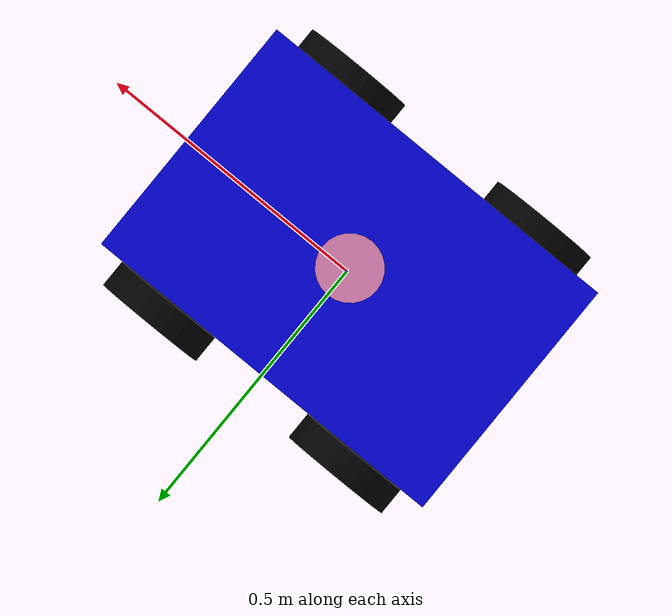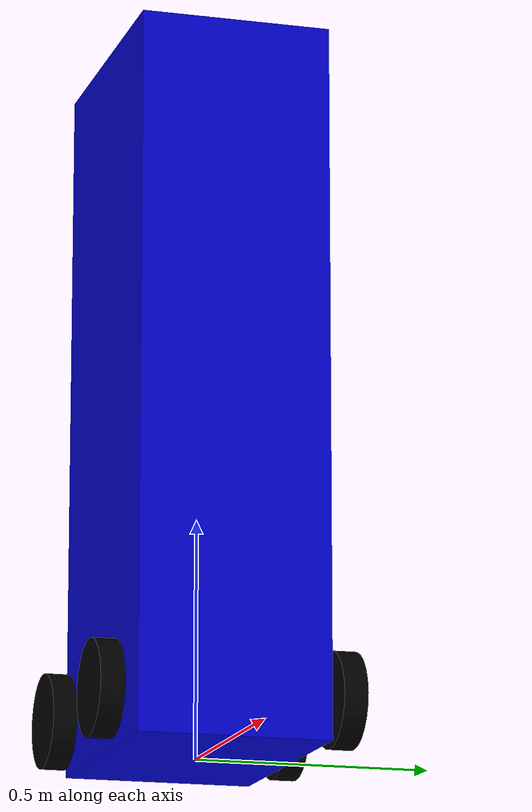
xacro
<?xml version="1.0"?>
<robot name="my_bot" xmlns:xacro="http://ros.org/wiki/xacro">

  <!-- Base Link -->
  <link name="base_link">
    <visual>
      <geometry><box size="0.6 0.4 1.5"/></geometry>
      <origin xyz="0 0 0.75" rpy="0 0 0"/>
      <material name="blue"><color rgba="0 0 0.8 1"/></material>
    </visual>
    <collision>
      <geometry><box size="0.6 0.4 1.5"/></geometry>
      <origin xyz="0 0 0.75" rpy="0 0 0"/>
    </collision>
    <inertial>
      <mass value="20.0"/>
      <inertia ixx="1.0" ixy="0" ixz="0" iyy="1.0" iyz="0" izz="1.0"/>
    </inertial>
  </link>

  <!-- Footprint (needed for Nav2) -->
  <link name="base_footprint"/>
  <joint name="base_joint" type="fixed">
    <parent link="base_link"/>
    <child link="base_footprint"/>
    <origin xyz="0 0 0" rpy="0 0 0"/>
  </joint>

  <!-- Wheels Macros -->
  <xacro:macro name="wheel" params="name x y">
    <link name="${name}_wheel">
        <visual><geometry><cylinder radius="0.1" length="0.05"/></geometry><material name="black"><color rgba="0 0 0 1"/></material></visual>
        <collision><geometry><cylinder radius="0.1" length="0.05"/></geometry></collision>
        <inertial><mass value="1.0"/><inertia ixx="0.1" ixy="0" ixz="0" iyy="0.1" iyz="0" izz="0.1"/></inertial>
    </link>
    <joint name="${name}_wheel_joint" type="continuous">
        <parent link="base_link"/>
        <child link="${name}_wheel"/>
        <origin xyz="${x} ${y} 0.1" rpy="-1.5707 0 0"/>
        <axis xyz="0 0 1"/>
    </joint>
  </xacro:macro>

  <xacro:wheel name="front_left" x="0.2" y="0.25"/>
  <xacro:wheel name="front_right" x="0.2" y="-0.25"/>
  <xacro:wheel name="rear_left" x="-0.2" y="0.25"/>
  <xacro:wheel name="rear_right" x="-0.2" y="-0.25"/>

  <!-- LIDAR -->
  <link name="lidar_link">
    <visual><geometry><cylinder radius="0.05" length="0.1"/></geometry></visual>
  </link>
  <joint name="lidar_joint" type="fixed">
    <parent link="base_link"/>
    <child link="lidar_link"/>
    <origin xyz="0 0 1.55" rpy="0 0 0"/>
  </joint>

  <!-- IMU -->
  <link name="imu_link"/>
  <joint name="imu_joint" type="fixed">
    <parent link="base_link"/>
    <child link="imu_link"/>
    <origin xyz="0 0 0.5"/>
  </joint>

  <!-- GPS -->
  <link name="gps_link"/>
  <joint name="gps_joint" type="fixed">
    <parent link="base_link"/>
    <child link="gps_link"/>
    <origin xyz="0 0 1.5"/>
  </joint>

  <!-- Gazebo Plugins -->
  <gazebo>
    <!-- Diff Drive (Controls rear wheels, simulated skid steer) -->
     <plugin filename="gz-sim-diff-drive-system" name="gz::sim::systems::DiffDrive">
        <left_joint>rear_left_wheel_joint</left_joint>
        <left_joint>front_left_wheel_joint</left_joint>
        <right_joint>rear_right_wheel_joint</right_joint>
        <right_joint>front_right_wheel_joint</right_joint>
        <wheel_separation>0.5</wheel_separation>
        <wheel_radius>0.1</wheel_radius>
        <odom_publish_frequency>20</odom_publish_frequency>
        <topic>cmd_vel</topic>
        <!-- This plugin will publish odometry on this topic -->
        <odom_topic>odom</odom_topic>
        <!-- The header frame_id for the odom message -->
        <frame_id>odom</frame_id>
        <!-- The header child_frame_id for the odom message -->
        <child_frame_id>base_link</child_frame_id>
    </plugin>

    <!-- Joint State Publisher -->
    <plugin filename="gz-sim-joint-state-publisher-system" name="gz::sim::systems::JointStatePublisher"/>

    <!-- Lidar Plugin -->
    <plugin filename="gz-sim-sensors-system" name="gz::sim::systems::Sensors">
        <render_engine>ogre2</render_engine>
    </plugin>
  </gazebo>

  <gazebo reference="lidar_link">
    <sensor name="lidar" type="gpu_lidar">
      <topic>scan</topic>
      <update_rate>10</update_rate>
      <lidar>
        <scan><horizontal><samples>360</samples><resolution>1</resolution><min_angle>-3.14</min_angle><max_angle>3.14</max_angle></horizontal></scan>
        <range><min>0.1</min><max>10.0</max></range>
      </lidar>
      <always_on>1</always_on>
      <visualize>true</visualize>
    </sensor>
  </gazebo>

  <gazebo reference="imu_link">
    <sensor name="imu_sensor" type="imu">
      <always_on>1</always_on>
      <update_rate>50</update_rate>
      <topic>imu</topic>
    </sensor>
  </gazebo>

  <gazebo reference="gps_link">
    <sensor name="gps_sensor" type="navsat">
      <always_on>1</always_on>
      <update_rate>1</update_rate>
      <topic>gps/fix</topic>
    </sensor>
  </gazebo>

</robot>
